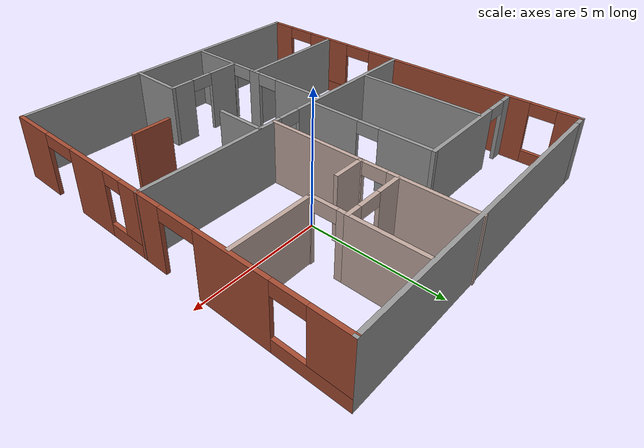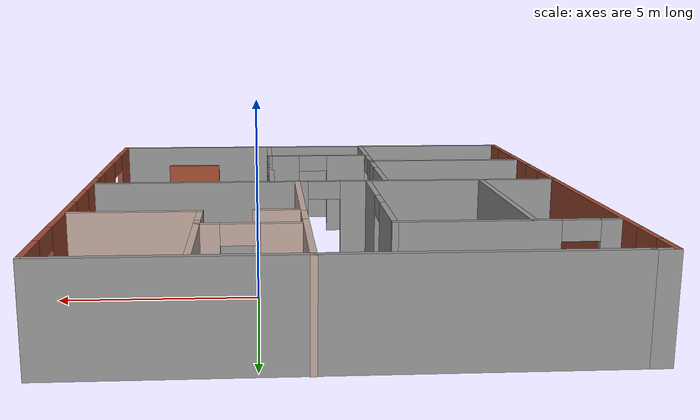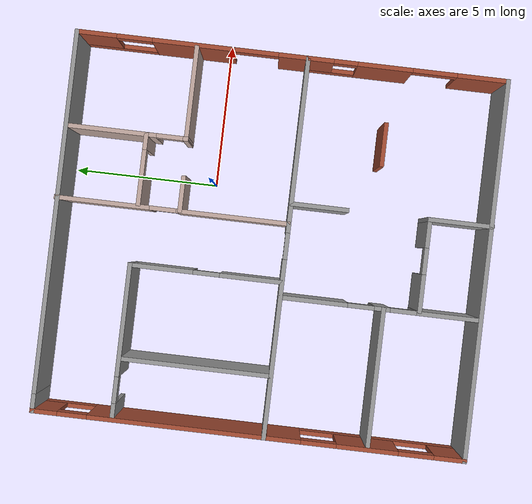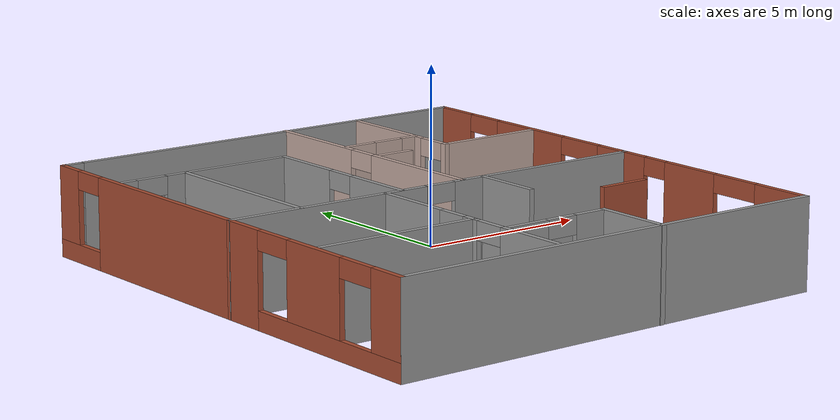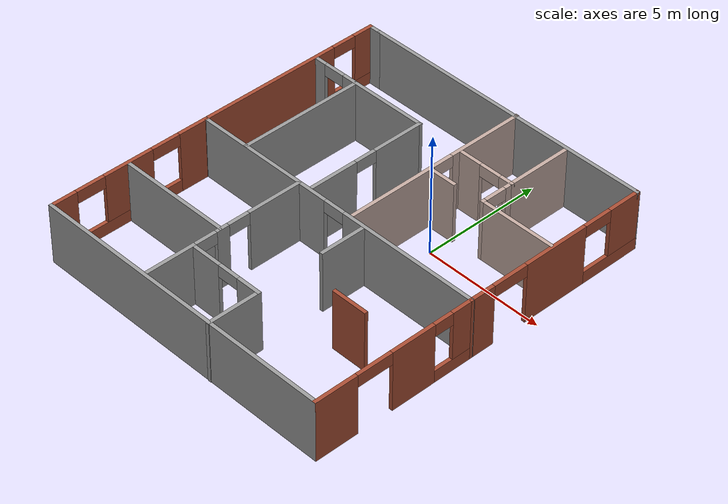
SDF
<?xml version='1.0'?>
<sdf version='1.6'>
  <model name='floor_plan'>
    <pose frame=''>-1.89006 -2.14973 0 0 -0 0</pose>
    <link name='Wall_0'>
      <pose frame=''>0 -0.539534 0 0 -0 3.14039</pose>
      <visual name='Wall_0_Visual_0'>
        <pose frame=''>-3.50083 0 1.25 0 -0 0</pose>
        <geometry>
          <box>
            <size>5.99834 0.15 2.5</size>
          </box>
        </geometry>
        <material>
          <script>
            <uri>file://media/materials/scripts/gazebo.material</uri>
            <name>Gazebo/Grey</name>
          </script>
          <ambient>1 1 1 1</ambient>
        </material>
        <meta>
          <layer>0</layer>
        </meta>
      </visual>
      <collision name='Wall_0_Collision_0'>
        <geometry>
          <box>
            <size>5.99834 0.15 2.5</size>
          </box>
        </geometry>
        <pose frame=''>-3.50083 0 1.25 0 -0 0</pose>
      </collision>
      <visual name='Wall_0_Visual_1'>
        <pose frame=''>3.44917 0 1.25 0 -0 0</pose>
        <geometry>
          <box>
            <size>6.10166 0.15 2.5</size>
          </box>
        </geometry>
        <material>
          <script>
            <uri>file://media/materials/scripts/gazebo.material</uri>
            <name>Gazebo/Grey</name>
          </script>
          <ambient>1 1 1 1</ambient>
        </material>
        <meta>
          <layer>0</layer>
        </meta>
      </visual>
      <collision name='Wall_0_Collision_1'>
        <geometry>
          <box>
            <size>6.10166 0.15 2.5</size>
          </box>
        </geometry>
        <pose frame=''>3.44917 0 1.25 0 -0 0</pose>
      </collision>
      <visual name='Wall_0_Visual_2'>
        <pose frame=''>-0.051658 0 2.25 0 -0 0</pose>
        <geometry>
          <box>
            <size>0.9 0.15 0.5</size>
          </box>
        </geometry>
        <material>
          <script>
            <uri>file://media/materials/scripts/gazebo.material</uri>
            <name>Gazebo/Grey</name>
          </script>
          <ambient>1 1 1 1</ambient>
        </material>
        <meta>
          <layer>0</layer>
        </meta>
      </visual>
      <collision name='Wall_0_Collision_2'>
        <geometry>
          <box>
            <size>0.9 0.15 0.5</size>
          </box>
        </geometry>
        <pose frame=''>-0.051658 0 2.25 0 -0 0</pose>
      </collision>
    </link>
    <link name='Wall_11'>
      <collision name='Wall_11_Collision'>
        <geometry>
          <box>
            <size>2 0.15 2.5</size>
          </box>
        </geometry>
        <pose frame=''>0 0 1.25 0 -0 0</pose>
      </collision>
      <visual name='Wall_11_Visual'>
        <pose frame=''>0 0 1.25 0 -0 0</pose>
        <geometry>
          <box>
            <size>2 0.15 2.5</size>
          </box>
        </geometry>
        <material>
          <script>
            <uri>file://media/materials/scripts/gazebo.material</uri>
            <name>Gazebo/Grey</name>
          </script>
          <ambient>1 1 1 1</ambient>
        </material>
        <meta>
          <layer>0</layer>
        </meta>
      </visual>
      <pose frame=''>1.48948 -1.49915 0 0 0 -1.5708</pose>
    </link>
    <link name='Wall_13'>
      <collision name='Wall_13_Collision'>
        <geometry>
          <box>
            <size>1.5 0.15 2.5</size>
          </box>
        </geometry>
        <pose frame=''>0 0 1.25 0 -0 0</pose>
      </collision>
      <visual name='Wall_13_Visual'>
        <pose frame=''>0 0 1.25 0 -0 0</pose>
        <geometry>
          <box>
            <size>1.5 0.15 2.5</size>
          </box>
        </geometry>
        <material>
          <script>
            <uri>file://media/materials/scripts/gazebo.material</uri>
            <name>Gazebo/Bricks</name>
          </script>
          <ambient>1 1 1 1</ambient>
        </material>
        <meta>
          <layer>0</layer>
        </meta>
      </visual>
      <pose frame=''>3.82409 -3.40918 0 0 -0 0</pose>
    </link>
    <link name='Wall_15'>
      <collision name='Wall_15_Collision'>
        <geometry>
          <box>
            <size>4.75 0.15 2.5</size>
          </box>
        </geometry>
        <pose frame=''>0 0 1.25 0 -0 0</pose>
      </collision>
      <visual name='Wall_15_Visual'>
        <pose frame=''>0 0 1.25 0 -0 0</pose>
        <geometry>
          <box>
            <size>4.75 0.15 2.5</size>
          </box>
        </geometry>
        <material>
          <script>
            <uri>file://media/materials/scripts/gazebo.material</uri>
            <name>Gazebo/Grey</name>
          </script>
          <ambient>1 1 1 1</ambient>
        </material>
        <meta>
          <layer>0</layer>
        </meta>
      </visual>
      <pose frame=''>-3.97817 -4.0327 0 0 -0 3.14159</pose>
    </link>
    <link name='Wall_2'>
      <pose frame=''>-6.42506 -3.93398 0 0 0 -1.5708</pose>
      <visual name='Wall_2_Visual_0'>
        <pose frame=''>-2.80871 0 1.25 0 -0 0</pose>
        <geometry>
          <box>
            <size>1.30653 0.15 2.5</size>
          </box>
        </geometry>
        <material>
          <script>
            <uri>file://media/materials/scripts/gazebo.material</uri>
            <name>Gazebo/Bricks</name>
          </script>
          <ambient>1 1 1 1</ambient>
        </material>
        <meta>
          <layer>0</layer>
        </meta>
      </visual>
      <collision name='Wall_2_Collision_0'>
        <geometry>
          <box>
            <size>1.30653 0.15 2.5</size>
          </box>
        </geometry>
        <pose frame=''>-2.80871 0 1.25 0 -0 0</pose>
      </collision>
      <visual name='Wall_2_Visual_1'>
        <pose frame=''>0.653263 0 0.25 0 -0 0</pose>
        <geometry>
          <box>
            <size>5.61743 0.15 0.5</size>
          </box>
        </geometry>
        <material>
          <script>
            <uri>file://media/materials/scripts/gazebo.material</uri>
            <name>Gazebo/Bricks</name>
          </script>
          <ambient>1 1 1 1</ambient>
        </material>
        <meta>
          <layer>0</layer>
        </meta>
      </visual>
      <collision name='Wall_2_Collision_1'>
        <geometry>
          <box>
            <size>5.61743 0.15 0.5</size>
          </box>
        </geometry>
        <pose frame=''>0.653263 0 0.25 0 -0 0</pose>
      </collision>
      <visual name='Wall_2_Visual_2'>
        <pose frame=''>0.095441 0 1.5 0 -0 0</pose>
        <geometry>
          <box>
            <size>2.10179 0.15 2</size>
          </box>
        </geometry>
        <material>
          <script>
            <uri>file://media/materials/scripts/gazebo.material</uri>
            <name>Gazebo/Bricks</name>
          </script>
          <ambient>1 1 1 1</ambient>
        </material>
        <meta>
          <layer>0</layer>
        </meta>
      </visual>
      <collision name='Wall_2_Collision_2'>
        <geometry>
          <box>
            <size>2.10179 0.15 2</size>
          </box>
        </geometry>
        <pose frame=''>0.095441 0 1.5 0 -0 0</pose>
      </collision>
      <visual name='Wall_2_Visual_3'>
        <pose frame=''>2.90416 0 1.5 0 -0 0</pose>
        <geometry>
          <box>
            <size>1.11564 0.15 2</size>
          </box>
        </geometry>
        <material>
          <script>
            <uri>file://media/materials/scripts/gazebo.material</uri>
            <name>Gazebo/Bricks</name>
          </script>
          <ambient>1 1 1 1</ambient>
        </material>
        <meta>
          <layer>0</layer>
        </meta>
      </visual>
      <collision name='Wall_2_Collision_3'>
        <geometry>
          <box>
            <size>1.11564 0.15 2</size>
          </box>
        </geometry>
        <pose frame=''>2.90416 0 1.5 0 -0 0</pose>
      </collision>
      <visual name='Wall_2_Visual_4'>
        <pose frame=''>-1.55545 0 2.25 0 -0 0</pose>
        <geometry>
          <box>
            <size>1.2 0.15 0.5</size>
          </box>
        </geometry>
        <material>
          <script>
            <uri>file://media/materials/scripts/gazebo.material</uri>
            <name>Gazebo/Bricks</name>
          </script>
          <ambient>1 1 1 1</ambient>
        </material>
        <meta>
          <layer>0</layer>
        </meta>
      </visual>
      <collision name='Wall_2_Collision_4'>
        <geometry>
          <box>
            <size>1.2 0.15 0.5</size>
          </box>
        </geometry>
        <pose frame=''>-1.55545 0 2.25 0 -0 0</pose>
      </collision>
      <visual name='Wall_2_Visual_5'>
        <pose frame=''>1.74633 0 2.25 0 -0 0</pose>
        <geometry>
          <box>
            <size>1.2 0.15 0.5</size>
          </box>
        </geometry>
        <material>
          <script>
            <uri>file://media/materials/scripts/gazebo.material</uri>
            <name>Gazebo/Bricks</name>
          </script>
          <ambient>1 1 1 1</ambient>
        </material>
        <meta>
          <layer>0</layer>
        </meta>
      </visual>
      <collision name='Wall_2_Collision_5'>
        <geometry>
          <box>
            <size>1.2 0.15 0.5</size>
          </box>
        </geometry>
        <pose frame=''>1.74633 0 2.25 0 -0 0</pose>
      </collision>
    </link>
    <link name='Wall_3'>
      <collision name='Wall_3_Collision'>
        <geometry>
          <box>
            <size>13 0.15 2.5</size>
          </box>
        </geometry>
        <pose frame=''>0 0 1.25 0 -0 0</pose>
      </collision>
      <visual name='Wall_3_Visual'>
        <pose frame=''>0 0 1.25 0 -0 0</pose>
        <geometry>
          <box>
            <size>13 0.15 2.5</size>
          </box>
        </geometry>
        <material>
          <script>
            <uri>file://media/materials/scripts/gazebo.material</uri>
            <name>Gazebo/Grey</name>
          </script>
          <ambient>1 1 1 1</ambient>
        </material>
        <meta>
          <layer>0</layer>
        </meta>
      </visual>
      <pose frame=''>0 -7.32112 0 0 0 -2.4e-05</pose>
    </link>
    <link name='Wall_36'>
      <pose frame=''>-1.17934 2.06051 0 0 -0 1.5708</pose>
      <visual name='Wall_36_Visual_0'>
        <pose frame=''>-1.55306 0 1.25 0 -0 0</pose>
        <geometry>
          <box>
            <size>2.14389 0.15 2.5</size>
          </box>
        </geometry>
        <material>
          <script>
            <uri>file://media/materials/scripts/gazebo.material</uri>
            <name>Gazebo/Grey</name>
          </script>
          <ambient>1 1 1 1</ambient>
        </material>
        <meta>
          <layer>0</layer>
        </meta>
      </visual>
      <collision name='Wall_36_Collision_0'>
        <geometry>
          <box>
            <size>2.14389 0.15 2.5</size>
          </box>
        </geometry>
        <pose frame=''>-1.55306 0 1.25 0 -0 0</pose>
      </collision>
      <visual name='Wall_36_Visual_1'>
        <pose frame=''>1.52195 0 1.25 0 -0 0</pose>
        <geometry>
          <box>
            <size>2.20611 0.15 2.5</size>
          </box>
        </geometry>
        <material>
          <script>
            <uri>file://media/materials/scripts/gazebo.material</uri>
            <name>Gazebo/Grey</name>
          </script>
          <ambient>1 1 1 1</ambient>
        </material>
        <meta>
          <layer>0</layer>
        </meta>
      </visual>
      <collision name='Wall_36_Collision_1'>
        <geometry>
          <box>
            <size>2.20611 0.15 2.5</size>
          </box>
        </geometry>
        <pose frame=''>1.52195 0 1.25 0 -0 0</pose>
      </collision>
      <visual name='Wall_36_Visual_2'>
        <pose frame=''>-0.031111 0 2.25 0 -0 0</pose>
        <geometry>
          <box>
            <size>0.9 0.15 0.5</size>
          </box>
        </geometry>
        <material>
          <script>
            <uri>file://media/materials/scripts/gazebo.material</uri>
            <name>Gazebo/Grey</name>
          </script>
          <ambient>1 1 1 1</ambient>
        </material>
        <meta>
          <layer>0</layer>
        </meta>
      </visual>
      <collision name='Wall_36_Collision_2'>
        <geometry>
          <box>
            <size>0.9 0.15 0.5</size>
          </box>
        </geometry>
        <pose frame=''>-0.031111 0 2.25 0 -0 0</pose>
      </collision>
    </link>
    <link name='Wall_37'>
      <pose frame=''>-3.72933 4.61051 0 0 -0 3.14159</pose>
      <visual name='Wall_37_Visual_0'>
        <pose frame=''>-0.694741 0 1.25 0 -0 0</pose>
        <geometry>
          <box>
            <size>3.86052 0.15 2.5</size>
          </box>
        </geometry>
        <material>
          <script>
            <uri>file://media/materials/scripts/gazebo.material</uri>
            <name>Gazebo/Grey</name>
          </script>
          <ambient>1 1 1 1</ambient>
        </material>
        <meta>
          <layer>0</layer>
        </meta>
      </visual>
      <collision name='Wall_37_Collision_0'>
        <geometry>
          <box>
            <size>3.86052 0.15 2.5</size>
          </box>
        </geometry>
        <pose frame=''>-0.694741 0 1.25 0 -0 0</pose>
      </collision>
      <visual name='Wall_37_Visual_1'>
        <pose frame=''>2.38026 0 1.25 0 -0 0</pose>
        <geometry>
          <box>
            <size>0.489482 0.15 2.5</size>
          </box>
        </geometry>
        <material>
          <script>
            <uri>file://media/materials/scripts/gazebo.material</uri>
            <name>Gazebo/Grey</name>
          </script>
          <ambient>1 1 1 1</ambient>
        </material>
        <meta>
          <layer>0</layer>
        </meta>
      </visual>
      <collision name='Wall_37_Collision_1'>
        <geometry>
          <box>
            <size>0.489482 0.15 2.5</size>
          </box>
        </geometry>
        <pose frame=''>2.38026 0 1.25 0 -0 0</pose>
      </collision>
      <visual name='Wall_37_Visual_2'>
        <pose frame=''>1.68552 0 2.25 0 -0 0</pose>
        <geometry>
          <box>
            <size>0.9 0.15 0.5</size>
          </box>
        </geometry>
        <material>
          <script>
            <uri>file://media/materials/scripts/gazebo.material</uri>
            <name>Gazebo/Grey</name>
          </script>
          <ambient>1 1 1 1</ambient>
        </material>
        <meta>
          <layer>0</layer>
        </meta>
      </visual>
      <collision name='Wall_37_Collision_2'>
        <geometry>
          <box>
            <size>0.9 0.15 0.5</size>
          </box>
        </geometry>
        <pose frame=''>1.68552 0 2.25 0 -0 0</pose>
      </collision>
    </link>
    <link name='Wall_39'>
      <collision name='Wall_39_Collision'>
        <geometry>
          <box>
            <size>5.25 0.15 2.5</size>
          </box>
        </geometry>
        <pose frame=''>0 0 1.25 0 -0 0</pose>
      </collision>
      <visual name='Wall_39_Visual'>
        <pose frame=''>0 0 1.25 0 -0 0</pose>
        <geometry>
          <box>
            <size>5.25 0.15 2.5</size>
          </box>
        </geometry>
        <material>
          <script>
            <uri>file://media/materials/scripts/gazebo.material</uri>
            <name>Gazebo/Grey</name>
          </script>
          <ambient>1 1 1 1</ambient>
        </material>
        <meta>
          <layer>0</layer>
        </meta>
      </visual>
      <pose frame=''>-4.34796 2.03294 0 0 0 -1.5708</pose>
    </link>
    <link name='Wall_4'>
      <pose frame=''>6.42506 -3.93427 0 0 -0 1.5708</pose>
      <visual name='Wall_4_Visual_0'>
        <pose frame=''>-2.56147 0 1.25 0 -0 0</pose>
        <geometry>
          <box>
            <size>1.80105 0.15 2.5</size>
          </box>
        </geometry>
        <material>
          <script>
            <uri>file://media/materials/scripts/gazebo.material</uri>
            <name>Gazebo/Bricks</name>
          </script>
          <ambient>1 1 1 1</ambient>
        </material>
        <meta>
          <layer>0</layer>
        </meta>
      </visual>
      <collision name='Wall_4_Collision_0'>
        <geometry>
          <box>
            <size>1.80105 0.15 2.5</size>
          </box>
        </geometry>
        <pose frame=''>-2.56147 0 1.25 0 -0 0</pose>
      </collision>
      <visual name='Wall_4_Visual_1'>
        <pose frame=''>0.775723 0 1.25 0 -0 0</pose>
        <geometry>
          <box>
            <size>1.87334 0.15 2.5</size>
          </box>
        </geometry>
        <material>
          <script>
            <uri>file://media/materials/scripts/gazebo.material</uri>
            <name>Gazebo/Bricks</name>
          </script>
          <ambient>1 1 1 1</ambient>
        </material>
        <meta>
          <layer>0</layer>
        </meta>
      </visual>
      <collision name='Wall_4_Collision_1'>
        <geometry>
          <box>
            <size>1.87334 0.15 2.5</size>
          </box>
        </geometry>
        <pose frame=''>0.775723 0 1.25 0 -0 0</pose>
      </collision>
      <visual name='Wall_4_Visual_2'>
        <pose frame=''>2.5872 0 0.25 0 -0 0</pose>
        <geometry>
          <box>
            <size>1.74961 0.15 0.5</size>
          </box>
        </geometry>
        <material>
          <script>
            <uri>file://media/materials/scripts/gazebo.material</uri>
            <name>Gazebo/Bricks</name>
          </script>
          <ambient>1 1 1 1</ambient>
        </material>
        <meta>
          <layer>0</layer>
        </meta>
      </visual>
      <collision name='Wall_4_Collision_2'>
        <geometry>
          <box>
            <size>1.74961 0.15 0.5</size>
          </box>
        </geometry>
        <pose frame=''>2.5872 0 0.25 0 -0 0</pose>
      </collision>
      <visual name='Wall_4_Visual_3'>
        <pose frame=''>2.9872 0 1.5 0 -0 0</pose>
        <geometry>
          <box>
            <size>0.949605 0.15 2</size>
          </box>
        </geometry>
        <material>
          <script>
            <uri>file://media/materials/scripts/gazebo.material</uri>
            <name>Gazebo/Bricks</name>
          </script>
          <ambient>1 1 1 1</ambient>
        </material>
        <meta>
          <layer>0</layer>
        </meta>
      </visual>
      <collision name='Wall_4_Collision_3'>
        <geometry>
          <box>
            <size>0.949605 0.15 2</size>
          </box>
        </geometry>
        <pose frame=''>2.9872 0 1.5 0 -0 0</pose>
      </collision>
      <visual name='Wall_4_Visual_4'>
        <pose frame=''>-0.910948 0 2.25 0 -0 0</pose>
        <geometry>
          <box>
            <size>1.5 0.15 0.5</size>
          </box>
        </geometry>
        <material>
          <script>
            <uri>file://media/materials/scripts/gazebo.material</uri>
            <name>Gazebo/Bricks</name>
          </script>
          <ambient>1 1 1 1</ambient>
        </material>
        <meta>
          <layer>0</layer>
        </meta>
      </visual>
      <collision name='Wall_4_Collision_4'>
        <geometry>
          <box>
            <size>1.5 0.15 0.5</size>
          </box>
        </geometry>
        <pose frame=''>-0.910948 0 2.25 0 -0 0</pose>
      </collision>
      <visual name='Wall_4_Visual_5'>
        <pose frame=''>2.11239 0 2.25 0 -0 0</pose>
        <geometry>
          <box>
            <size>0.8 0.15 0.5</size>
          </box>
        </geometry>
        <material>
          <script>
            <uri>file://media/materials/scripts/gazebo.material</uri>
            <name>Gazebo/Bricks</name>
          </script>
          <ambient>1 1 1 1</ambient>
        </material>
        <meta>
          <layer>0</layer>
        </meta>
      </visual>
      <collision name='Wall_4_Collision_5'>
        <geometry>
          <box>
            <size>0.8 0.15 0.5</size>
          </box>
        </geometry>
        <pose frame=''>2.11239 0 2.25 0 -0 0</pose>
      </collision>
    </link>
    <link name='Wall_45'>
      <pose frame=''>6.425 3.37786 0 0 -0 1.57081</pose>
      <visual name='Wall_45_Visual_0'>
        <pose frame=''>-3.45923 0 1.25 0 -0 0</pose>
        <geometry>
          <box>
            <size>1.08155 0.15 2.5</size>
          </box>
        </geometry>
        <material>
          <script>
            <uri>file://media/materials/scripts/gazebo.material</uri>
            <name>Gazebo/Bricks</name>
          </script>
          <ambient>1 1 1 1</ambient>
        </material>
        <meta>
          <layer>0</layer>
        </meta>
      </visual>
      <collision name='Wall_45_Collision_0'>
        <geometry>
          <box>
            <size>1.08155 0.15 2.5</size>
          </box>
        </geometry>
        <pose frame=''>-3.45923 0 1.25 0 -0 0</pose>
      </collision>
      <visual name='Wall_45_Visual_1'>
        <pose frame=''>-0.023066 0 1.25 0 -0 0</pose>
        <geometry>
          <box>
            <size>2.79077 0.15 2.5</size>
          </box>
        </geometry>
        <material>
          <script>
            <uri>file://media/materials/scripts/gazebo.material</uri>
            <name>Gazebo/Bricks</name>
          </script>
          <ambient>1 1 1 1</ambient>
        </material>
        <meta>
          <layer>0</layer>
        </meta>
      </visual>
      <collision name='Wall_45_Collision_1'>
        <geometry>
          <box>
            <size>2.79077 0.15 2.5</size>
          </box>
        </geometry>
        <pose frame=''>-0.023066 0 1.25 0 -0 0</pose>
      </collision>
      <visual name='Wall_45_Visual_2'>
        <pose frame=''>2.68616 0 0.25 0 -0 0</pose>
        <geometry>
          <box>
            <size>2.62768 0.15 0.5</size>
          </box>
        </geometry>
        <material>
          <script>
            <uri>file://media/materials/scripts/gazebo.material</uri>
            <name>Gazebo/Bricks</name>
          </script>
          <ambient>1 1 1 1</ambient>
        </material>
        <meta>
          <layer>0</layer>
        </meta>
      </visual>
      <collision name='Wall_45_Collision_2'>
        <geometry>
          <box>
            <size>2.62768 0.15 0.5</size>
          </box>
        </geometry>
        <pose frame=''>2.68616 0 0.25 0 -0 0</pose>
      </collision>
      <visual name='Wall_45_Visual_3'>
        <pose frame=''>3.28616 0 1.5 0 -0 0</pose>
        <geometry>
          <box>
            <size>1.42768 0.15 2</size>
          </box>
        </geometry>
        <material>
          <script>
            <uri>file://media/materials/scripts/gazebo.material</uri>
            <name>Gazebo/Bricks</name>
          </script>
          <ambient>1 1 1 1</ambient>
        </material>
        <meta>
          <layer>0</layer>
        </meta>
      </visual>
      <collision name='Wall_45_Collision_3'>
        <geometry>
          <box>
            <size>1.42768 0.15 2</size>
          </box>
        </geometry>
        <pose frame=''>3.28616 0 1.5 0 -0 0</pose>
      </collision>
      <visual name='Wall_45_Visual_4'>
        <pose frame=''>-2.16845 0 2.25 0 -0 0</pose>
        <geometry>
          <box>
            <size>1.5 0.15 0.5</size>
          </box>
        </geometry>
        <material>
          <script>
            <uri>file://media/materials/scripts/gazebo.material</uri>
            <name>Gazebo/Bricks</name>
          </script>
          <ambient>1 1 1 1</ambient>
        </material>
        <meta>
          <layer>0</layer>
        </meta>
      </visual>
      <collision name='Wall_45_Collision_4'>
        <geometry>
          <box>
            <size>1.5 0.15 0.5</size>
          </box>
        </geometry>
        <pose frame=''>-2.16845 0 2.25 0 -0 0</pose>
      </collision>
      <visual name='Wall_45_Visual_5'>
        <pose frame=''>1.97232 0 2.25 0 -0 0</pose>
        <geometry>
          <box>
            <size>1.2 0.15 0.5</size>
          </box>
        </geometry>
        <material>
          <script>
            <uri>file://media/materials/scripts/gazebo.material</uri>
            <name>Gazebo/Bricks</name>
          </script>
          <ambient>1 1 1 1</ambient>
        </material>
        <meta>
          <layer>0</layer>
        </meta>
      </visual>
      <collision name='Wall_45_Collision_5'>
        <geometry>
          <box>
            <size>1.2 0.15 0.5</size>
          </box>
        </geometry>
        <pose frame=''>1.97232 0 2.25 0 -0 0</pose>
      </collision>
    </link>
    <link name='Wall_46'>
      <collision name='Wall_46_Collision'>
        <geometry>
          <box>
            <size>12.5 0.15 2.5</size>
          </box>
        </geometry>
        <pose frame=''>0 0 1.25 0 -0 0</pose>
      </collision>
      <visual name='Wall_46_Visual'>
        <pose frame=''>0 0 1.25 0 -0 0</pose>
        <geometry>
          <box>
            <size>12.5 0.15 2.5</size>
          </box>
        </geometry>
        <material>
          <script>
            <uri>file://media/materials/scripts/gazebo.material</uri>
            <name>Gazebo/Grey</name>
          </script>
          <ambient>1 1 1 1</ambient>
        </material>
        <meta>
          <layer>0</layer>
        </meta>
      </visual>
      <pose frame=''>0.249944 7.303 0 0 -0 3.14159</pose>
    </link>
    <link name='Wall_48'>
      <pose frame=''>-6.42506 3.378 0 0 -0 1.5708</pose>
      <visual name='Wall_48_Visual_0'>
        <pose frame=''>-0.956686 0 1.25 0 -0 0</pose>
        <geometry>
          <box>
            <size>6.08663 0.15 2.5</size>
          </box>
        </geometry>
        <material>
          <script>
            <uri>file://media/materials/scripts/gazebo.material</uri>
            <name>Gazebo/Bricks</name>
          </script>
          <ambient>1 1 1 1</ambient>
        </material>
        <meta>
          <layer>0</layer>
        </meta>
      </visual>
      <collision name='Wall_48_Collision_0'>
        <geometry>
          <box>
            <size>6.08663 0.15 2.5</size>
          </box>
        </geometry>
        <pose frame=''>-0.956686 0 1.25 0 -0 0</pose>
      </collision>
      <visual name='Wall_48_Visual_1'>
        <pose frame=''>3.04331 0 0.25 0 -0 0</pose>
        <geometry>
          <box>
            <size>1.91337 0.15 0.5</size>
          </box>
        </geometry>
        <material>
          <script>
            <uri>file://media/materials/scripts/gazebo.material</uri>
            <name>Gazebo/Bricks</name>
          </script>
          <ambient>1 1 1 1</ambient>
        </material>
        <meta>
          <layer>0</layer>
        </meta>
      </visual>
      <collision name='Wall_48_Collision_1'>
        <geometry>
          <box>
            <size>1.91337 0.15 0.5</size>
          </box>
        </geometry>
        <pose frame=''>3.04331 0 0.25 0 -0 0</pose>
      </collision>
      <visual name='Wall_48_Visual_2'>
        <pose frame=''>3.54331 0 1.5 0 -0 0</pose>
        <geometry>
          <box>
            <size>0.913372 0.15 2</size>
          </box>
        </geometry>
        <material>
          <script>
            <uri>file://media/materials/scripts/gazebo.material</uri>
            <name>Gazebo/Bricks</name>
          </script>
          <ambient>1 1 1 1</ambient>
        </material>
        <meta>
          <layer>0</layer>
        </meta>
      </visual>
      <collision name='Wall_48_Collision_2'>
        <geometry>
          <box>
            <size>0.913372 0.15 2</size>
          </box>
        </geometry>
        <pose frame=''>3.54331 0 1.5 0 -0 0</pose>
      </collision>
      <visual name='Wall_48_Visual_3'>
        <pose frame=''>2.58663 0 2.25 0 -0 0</pose>
        <geometry>
          <box>
            <size>1 0.15 0.5</size>
          </box>
        </geometry>
        <material>
          <script>
            <uri>file://media/materials/scripts/gazebo.material</uri>
            <name>Gazebo/Bricks</name>
          </script>
          <ambient>1 1 1 1</ambient>
        </material>
        <meta>
          <layer>0</layer>
        </meta>
      </visual>
      <collision name='Wall_48_Collision_3'>
        <geometry>
          <box>
            <size>1 0.15 0.5</size>
          </box>
        </geometry>
        <pose frame=''>2.58663 0 2.25 0 -0 0</pose>
      </collision>
    </link>
    <link name='Wall_49'>
      <collision name='Wall_49_Collision'>
        <geometry>
          <box>
            <size>0.65 0.15 2.5</size>
          </box>
        </geometry>
        <pose frame=''>0 0 1.25 0 -0 0</pose>
      </collision>
      <visual name='Wall_49_Visual'>
        <pose frame=''>0 0 1.25 0 -0 0</pose>
        <geometry>
          <box>
            <size>0.65 0.15 2.5</size>
          </box>
        </geometry>
        <material>
          <script>
            <uri>file://media/materials/scripts/gazebo.material</uri>
            <name>Gazebo/Grey</name>
          </script>
          <ambient>1 1 1 1</ambient>
        </material>
        <meta>
          <layer>0</layer>
        </meta>
      </visual>
      <pose frame=''>-6.17506 7.303 0 0 -0 0</pose>
    </link>
    <link name='Wall_51'>
      <pose frame=''>0.800151 3.41451 0 0 -0 1.5708</pose>
      <visual name='Wall_51_Visual_0'>
        <pose frame=''>-2.06358 0 1.25 0 -0 0</pose>
        <geometry>
          <box>
            <size>3.87284 0.15 2.5</size>
          </box>
        </geometry>
        <material>
          <script>
            <uri>file://media/materials/scripts/gazebo.material</uri>
            <name>Gazebo/Grey</name>
          </script>
          <ambient>0.760784 0.662745 0.627451 1</ambient>
        </material>
        <meta>
          <layer>0</layer>
        </meta>
      </visual>
      <collision name='Wall_51_Collision_0'>
        <geometry>
          <box>
            <size>3.87284 0.15 2.5</size>
          </box>
        </geometry>
        <pose frame=''>-2.06358 0 1.25 0 -0 0</pose>
      </collision>
      <visual name='Wall_51_Visual_1'>
        <pose frame=''>2.38642 0 1.25 0 -0 0</pose>
        <geometry>
          <box>
            <size>3.22716 0.15 2.5</size>
          </box>
        </geometry>
        <material>
          <script>
            <uri>file://media/materials/scripts/gazebo.material</uri>
            <name>Gazebo/Grey</name>
          </script>
          <ambient>0.760784 0.662745 0.627451 1</ambient>
        </material>
        <meta>
          <layer>0</layer>
        </meta>
      </visual>
      <collision name='Wall_51_Collision_1'>
        <geometry>
          <box>
            <size>3.22716 0.15 2.5</size>
          </box>
        </geometry>
        <pose frame=''>2.38642 0 1.25 0 -0 0</pose>
      </collision>
      <visual name='Wall_51_Visual_2'>
        <pose frame=''>0.322836 0 2.25 0 -0 0</pose>
        <geometry>
          <box>
            <size>0.9 0.15 0.5</size>
          </box>
        </geometry>
        <material>
          <script>
            <uri>file://media/materials/scripts/gazebo.material</uri>
            <name>Gazebo/Grey</name>
          </script>
          <ambient>0.760784 0.662745 0.627451 1</ambient>
        </material>
        <meta>
          <layer>0</layer>
        </meta>
      </visual>
      <collision name='Wall_51_Collision_2'>
        <geometry>
          <box>
            <size>0.9 0.15 0.5</size>
          </box>
        </geometry>
        <pose frame=''>0.322836 0 2.25 0 -0 0</pose>
      </collision>
    </link>
    <link name='Wall_53'>
      <pose frame=''>2.06768 4.57778 0 0 -0 0</pose>
      <visual name='Wall_53_Visual_0'>
        <pose frame=''>-0.747106 0 1.25 0 -0 0</pose>
        <geometry>
          <box>
            <size>1.00579 0.15 2.5</size>
          </box>
        </geometry>
        <material>
          <script>
            <uri>file://media/materials/scripts/gazebo.material</uri>
            <name>Gazebo/Grey</name>
          </script>
          <ambient>0.760784 0.662745 0.627451 1</ambient>
        </material>
        <meta>
          <layer>0</layer>
        </meta>
      </visual>
      <collision name='Wall_53_Collision_0'>
        <geometry>
          <box>
            <size>1.00579 0.15 2.5</size>
          </box>
        </geometry>
        <pose frame=''>-0.747106 0 1.25 0 -0 0</pose>
      </collision>
      <visual name='Wall_53_Visual_1'>
        <pose frame=''>0.952894 0 1.25 0 -0 0</pose>
        <geometry>
          <box>
            <size>0.594213 0.15 2.5</size>
          </box>
        </geometry>
        <material>
          <script>
            <uri>file://media/materials/scripts/gazebo.material</uri>
            <name>Gazebo/Grey</name>
          </script>
          <ambient>0.760784 0.662745 0.627451 1</ambient>
        </material>
        <meta>
          <layer>0</layer>
        </meta>
      </visual>
      <collision name='Wall_53_Collision_1'>
        <geometry>
          <box>
            <size>0.594213 0.15 2.5</size>
          </box>
        </geometry>
        <pose frame=''>0.952894 0 1.25 0 -0 0</pose>
      </collision>
      <visual name='Wall_53_Visual_2'>
        <pose frame=''>0.205787 0 2.25 0 -0 0</pose>
        <geometry>
          <box>
            <size>0.9 0.15 0.5</size>
          </box>
        </geometry>
        <material>
          <script>
            <uri>file://media/materials/scripts/gazebo.material</uri>
            <name>Gazebo/Grey</name>
          </script>
          <ambient>0.760784 0.662745 0.627451 1</ambient>
        </material>
        <meta>
          <layer>0</layer>
        </meta>
      </visual>
      <collision name='Wall_53_Collision_2'>
        <geometry>
          <box>
            <size>0.9 0.15 0.5</size>
          </box>
        </geometry>
        <pose frame=''>0.205787 0 2.25 0 -0 0</pose>
      </collision>
    </link>
    <link name='Wall_54'>
      <collision name='Wall_54_Collision'>
        <geometry>
          <box>
            <size>2.75 0.15 2.5</size>
          </box>
        </geometry>
        <pose frame=''>0 0 1.25 0 -0 0</pose>
      </collision>
      <visual name='Wall_54_Visual'>
        <pose frame=''>0 0 1.25 0 -0 0</pose>
        <geometry>
          <box>
            <size>2.75 0.15 2.5</size>
          </box>
        </geometry>
        <material>
          <script>
            <uri>file://media/materials/scripts/gazebo.material</uri>
            <name>Gazebo/Grey</name>
          </script>
          <ambient>0.760784 0.662745 0.627451 1</ambient>
        </material>
        <meta>
          <layer>0</layer>
        </meta>
      </visual>
      <pose frame=''>3.24268 5.87778 0 0 -0 1.5708</pose>
    </link>
    <link name='Wall_56'>
      <pose frame=''>3.24268 3.90278 0 0 0 -1.5708</pose>
      <visual name='Wall_56_Visual_0'>
        <pose frame=''>-0.543058 0 1.25 0 -0 0</pose>
        <geometry>
          <box>
            <size>0.413884 0.15 2.5</size>
          </box>
        </geometry>
        <material>
          <script>
            <uri>file://media/materials/scripts/gazebo.material</uri>
            <name>Gazebo/Grey</name>
          </script>
          <ambient>0.760784 0.662745 0.627451 1</ambient>
        </material>
        <meta>
          <layer>0</layer>
        </meta>
      </visual>
      <collision name='Wall_56_Collision_0'>
        <geometry>
          <box>
            <size>0.413884 0.15 2.5</size>
          </box>
        </geometry>
        <pose frame=''>-0.543058 0 1.25 0 -0 0</pose>
      </collision>
      <visual name='Wall_56_Visual_1'>
        <pose frame=''>0.656942 0 1.25 0 -0 0</pose>
        <geometry>
          <box>
            <size>0.186116 0.15 2.5</size>
          </box>
        </geometry>
        <material>
          <script>
            <uri>file://media/materials/scripts/gazebo.material</uri>
            <name>Gazebo/Grey</name>
          </script>
          <ambient>0.760784 0.662745 0.627451 1</ambient>
        </material>
        <meta>
          <layer>0</layer>
        </meta>
      </visual>
      <collision name='Wall_56_Collision_1'>
        <geometry>
          <box>
            <size>0.186116 0.15 2.5</size>
          </box>
        </geometry>
        <pose frame=''>0.656942 0 1.25 0 -0 0</pose>
      </collision>
      <visual name='Wall_56_Visual_2'>
        <pose frame=''>0.113884 0 2.25 0 -0 0</pose>
        <geometry>
          <box>
            <size>0.9 0.15 0.5</size>
          </box>
        </geometry>
        <material>
          <script>
            <uri>file://media/materials/scripts/gazebo.material</uri>
            <name>Gazebo/Grey</name>
          </script>
          <ambient>0.760784 0.662745 0.627451 1</ambient>
        </material>
        <meta>
          <layer>0</layer>
        </meta>
      </visual>
      <collision name='Wall_56_Collision_2'>
        <geometry>
          <box>
            <size>0.9 0.15 0.5</size>
          </box>
        </geometry>
        <pose frame=''>0.113884 0 2.25 0 -0 0</pose>
      </collision>
    </link>
    <link name='Wall_57'>
      <collision name='Wall_57_Collision'>
        <geometry>
          <box>
            <size>3.25 0.15 2.5</size>
          </box>
        </geometry>
        <pose frame=''>0 0 1.25 0 -0 0</pose>
      </collision>
      <visual name='Wall_57_Visual'>
        <pose frame=''>0 0 1.25 0 -0 0</pose>
        <geometry>
          <box>
            <size>3.25 0.15 2.5</size>
          </box>
        </geometry>
        <material>
          <script>
            <uri>file://media/materials/scripts/gazebo.material</uri>
            <name>Gazebo/Grey</name>
          </script>
          <ambient>0.760784 0.662745 0.627451 1</ambient>
        </material>
        <meta>
          <layer>0</layer>
        </meta>
      </visual>
      <pose frame=''>4.79268 3.22778 0 0 -0 0</pose>
    </link>
    <link name='Wall_59'>
      <collision name='Wall_59_Collision'>
        <geometry>
          <box>
            <size>1.25 0.15 2.5</size>
          </box>
        </geometry>
        <pose frame=''>0 0 1.25 0 -0 0</pose>
      </collision>
      <visual name='Wall_59_Visual'>
        <pose frame=''>0 0 1.25 0 -0 0</pose>
        <geometry>
          <box>
            <size>1.25 0.15 2.5</size>
          </box>
        </geometry>
        <material>
          <script>
            <uri>file://media/materials/scripts/gazebo.material</uri>
            <name>Gazebo/Grey</name>
          </script>
          <ambient>0.760784 0.662745 0.627451 1</ambient>
        </material>
        <meta>
          <layer>0</layer>
        </meta>
      </visual>
      <pose frame=''>1.382 3.16183 0 0 -0 0</pose>
    </link>
    <link name='Wall_6'>
      <pose frame=''>-1.67816 -3.87415 0 0 0 -1.5708</pose>
      <visual name='Wall_6_Visual_0'>
        <pose frame=''>-2.21563 0 1.25 0 -0 0</pose>
        <geometry>
          <box>
            <size>2.31875 0.15 2.5</size>
          </box>
        </geometry>
        <material>
          <script>
            <uri>file://media/materials/scripts/gazebo.material</uri>
            <name>Gazebo/Grey</name>
          </script>
          <ambient>1 1 1 1</ambient>
        </material>
        <meta>
          <layer>0</layer>
        </meta>
      </visual>
      <collision name='Wall_6_Collision_0'>
        <geometry>
          <box>
            <size>2.31875 0.15 2.5</size>
          </box>
        </geometry>
        <pose frame=''>-2.21563 0 1.25 0 -0 0</pose>
      </collision>
      <visual name='Wall_6_Visual_1'>
        <pose frame=''>0.110792 0 1.25 0 -0 0</pose>
        <geometry>
          <box>
            <size>0.534083 0.15 2.5</size>
          </box>
        </geometry>
        <material>
          <script>
            <uri>file://media/materials/scripts/gazebo.material</uri>
            <name>Gazebo/Grey</name>
          </script>
          <ambient>1 1 1 1</ambient>
        </material>
        <meta>
          <layer>0</layer>
        </meta>
      </visual>
      <collision name='Wall_6_Collision_1'>
        <geometry>
          <box>
            <size>0.534083 0.15 2.5</size>
          </box>
        </geometry>
        <pose frame=''>0.110792 0 1.25 0 -0 0</pose>
      </collision>
      <visual name='Wall_6_Visual_2'>
        <pose frame=''>2.32642 0 1.25 0 -0 0</pose>
        <geometry>
          <box>
            <size>2.09717 0.15 2.5</size>
          </box>
        </geometry>
        <material>
          <script>
            <uri>file://media/materials/scripts/gazebo.material</uri>
            <name>Gazebo/Grey</name>
          </script>
          <ambient>1 1 1 1</ambient>
        </material>
        <meta>
          <layer>0</layer>
        </meta>
      </visual>
      <collision name='Wall_6_Collision_2'>
        <geometry>
          <box>
            <size>2.09717 0.15 2.5</size>
          </box>
        </geometry>
        <pose frame=''>2.32642 0 1.25 0 -0 0</pose>
      </collision>
      <visual name='Wall_6_Visual_3'>
        <pose frame=''>-0.60625 0 2.25 0 -0 0</pose>
        <geometry>
          <box>
            <size>0.9 0.15 0.5</size>
          </box>
        </geometry>
        <material>
          <script>
            <uri>file://media/materials/scripts/gazebo.material</uri>
            <name>Gazebo/Grey</name>
          </script>
          <ambient>1 1 1 1</ambient>
        </material>
        <meta>
          <layer>0</layer>
        </meta>
      </visual>
      <collision name='Wall_6_Collision_3'>
        <geometry>
          <box>
            <size>0.9 0.15 0.5</size>
          </box>
        </geometry>
        <pose frame=''>-0.60625 0 2.25 0 -0 0</pose>
      </collision>
      <visual name='Wall_6_Visual_4'>
        <pose frame=''>0.827833 0 2.25 0 -0 0</pose>
        <geometry>
          <box>
            <size>0.9 0.15 0.5</size>
          </box>
        </geometry>
        <material>
          <script>
            <uri>file://media/materials/scripts/gazebo.material</uri>
            <name>Gazebo/Grey</name>
          </script>
          <ambient>1 1 1 1</ambient>
        </material>
        <meta>
          <layer>0</layer>
        </meta>
      </visual>
      <collision name='Wall_6_Collision_4'>
        <geometry>
          <box>
            <size>0.9 0.15 0.5</size>
          </box>
        </geometry>
        <pose frame=''>0.827833 0 2.25 0 -0 0</pose>
      </collision>
    </link>
    <link name='Wall_8'>
      <pose frame=''>-0.047711 -5.23951 0 0 -0 0</pose>
      <visual name='Wall_8_Visual_0'>
        <pose frame=''>-0.96773 0 1.25 0 -0 0</pose>
        <geometry>
          <box>
            <size>1.31454 0.15 2.5</size>
          </box>
        </geometry>
        <material>
          <script>
            <uri>file://media/materials/scripts/gazebo.material</uri>
            <name>Gazebo/Grey</name>
          </script>
          <ambient>1 1 1 1</ambient>
        </material>
        <meta>
          <layer>0</layer>
        </meta>
      </visual>
      <collision name='Wall_8_Collision_0'>
        <geometry>
          <box>
            <size>1.31454 0.15 2.5</size>
          </box>
        </geometry>
        <pose frame=''>-0.96773 0 1.25 0 -0 0</pose>
      </collision>
      <visual name='Wall_8_Visual_1'>
        <pose frame=''>1.10727 0 1.25 0 -0 0</pose>
        <geometry>
          <box>
            <size>1.03546 0.15 2.5</size>
          </box>
        </geometry>
        <material>
          <script>
            <uri>file://media/materials/scripts/gazebo.material</uri>
            <name>Gazebo/Grey</name>
          </script>
          <ambient>1 1 1 1</ambient>
        </material>
        <meta>
          <layer>0</layer>
        </meta>
      </visual>
      <collision name='Wall_8_Collision_1'>
        <geometry>
          <box>
            <size>1.03546 0.15 2.5</size>
          </box>
        </geometry>
        <pose frame=''>1.10727 0 1.25 0 -0 0</pose>
      </collision>
      <visual name='Wall_8_Visual_2'>
        <pose frame=''>0.13954 0 2.25 0 -0 0</pose>
        <geometry>
          <box>
            <size>0.9 0.15 0.5</size>
          </box>
        </geometry>
        <material>
          <script>
            <uri>file://media/materials/scripts/gazebo.material</uri>
            <name>Gazebo/Grey</name>
          </script>
          <ambient>1 1 1 1</ambient>
        </material>
        <meta>
          <layer>0</layer>
        </meta>
      </visual>
      <collision name='Wall_8_Collision_2'>
        <geometry>
          <box>
            <size>0.9 0.15 0.5</size>
          </box>
        </geometry>
        <pose frame=''>0.13954 0 2.25 0 -0 0</pose>
      </collision>
    </link>
    <link name='Wall_9'>
      <collision name='Wall_9_Collision'>
        <geometry>
          <box>
            <size>2.25 0.15 2.5</size>
          </box>
        </geometry>
        <pose frame=''>0 0 1.25 0 -0 0</pose>
      </collision>
      <visual name='Wall_9_Visual'>
        <pose frame=''>0 0 1.25 0 -0 0</pose>
        <geometry>
          <box>
            <size>2.25 0.15 2.5</size>
          </box>
        </geometry>
        <material>
          <script>
            <uri>file://media/materials/scripts/gazebo.material</uri>
            <name>Gazebo/Grey</name>
          </script>
          <ambient>1 1 1 1</ambient>
        </material>
        <meta>
          <layer>0</layer>
        </meta>
      </visual>
      <pose frame=''>1.50229 -6.28951 0 0 0 -1.5708</pose>
    </link>
    <static>1</static>
  </model>
</sdf>
